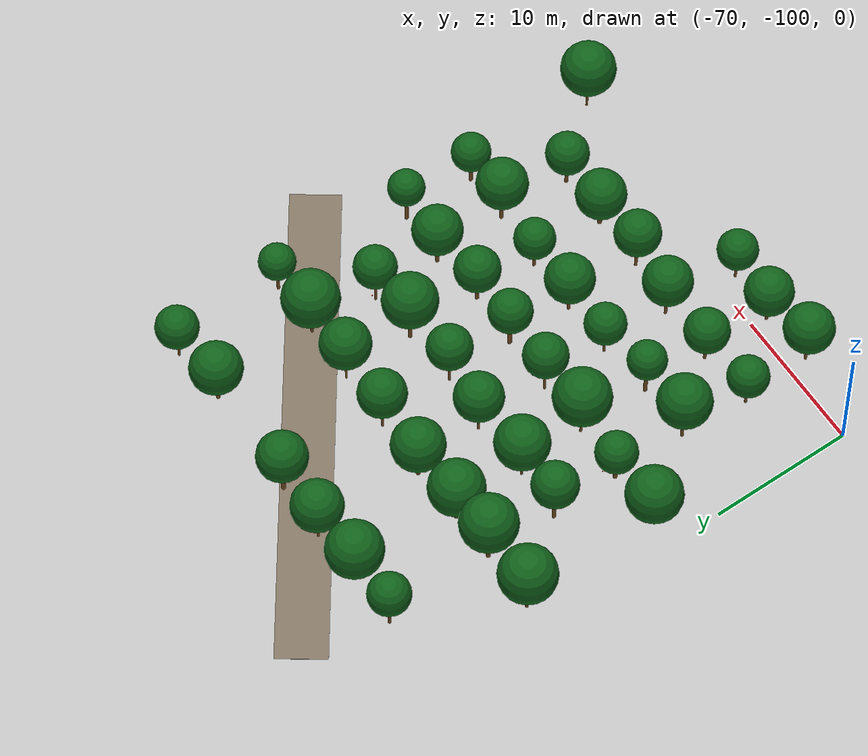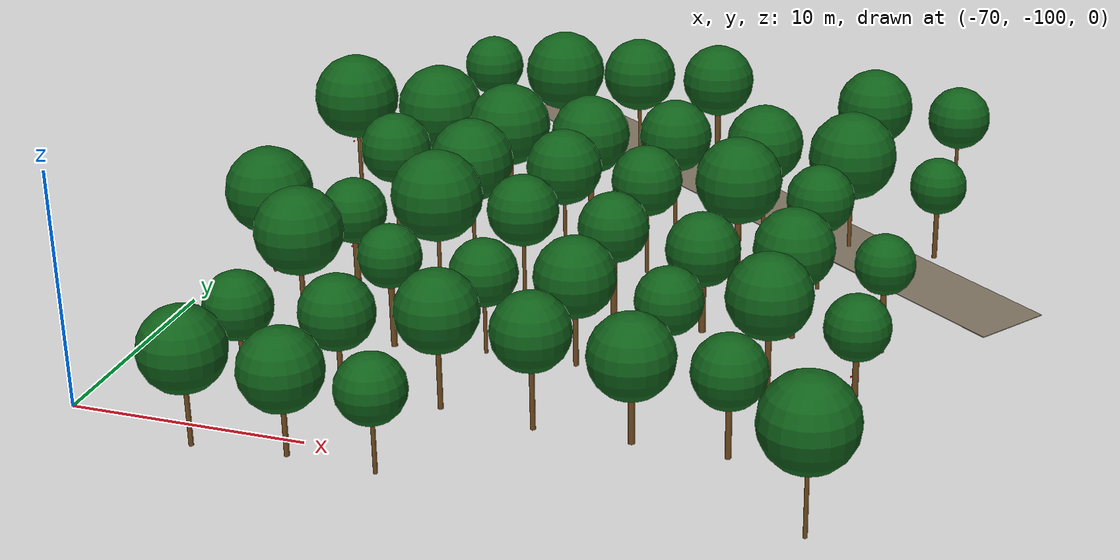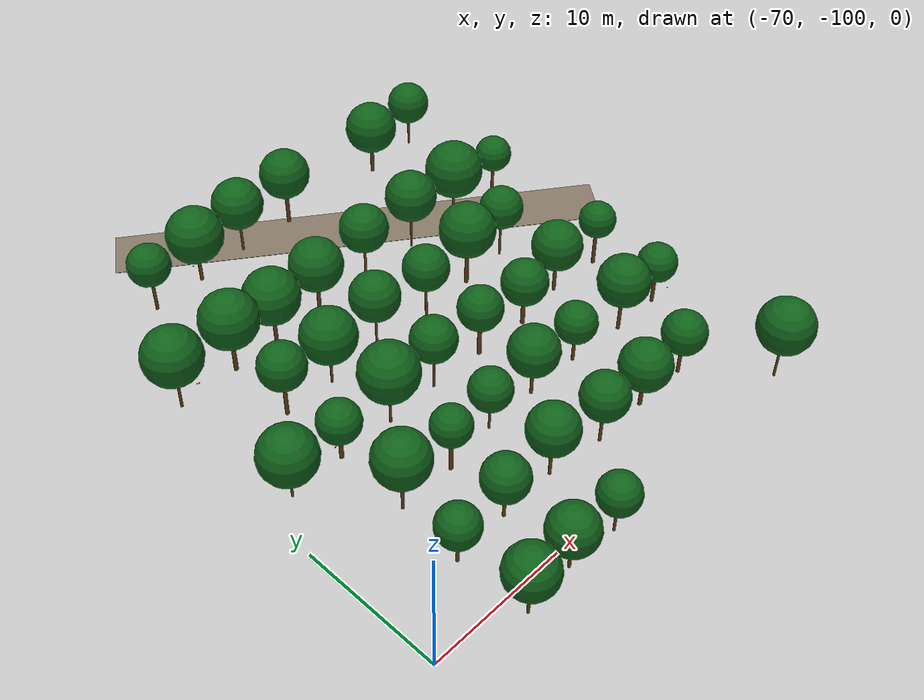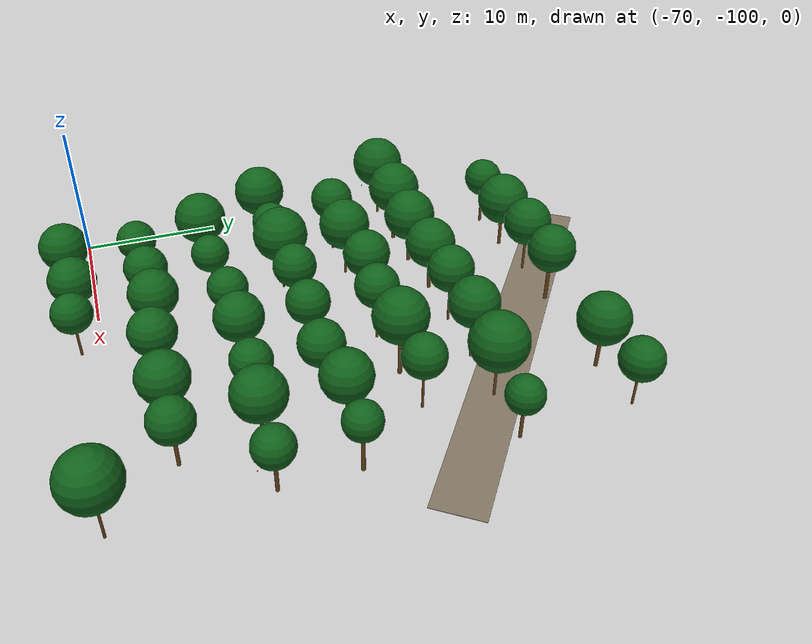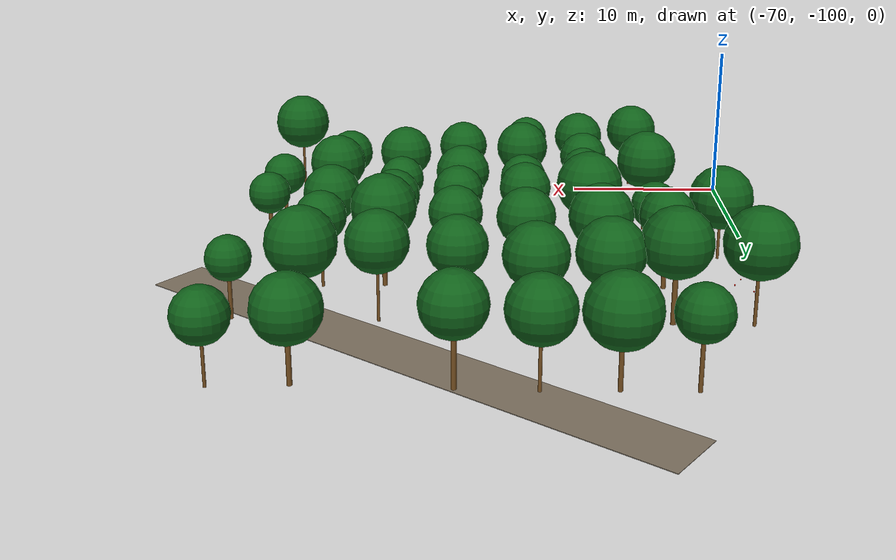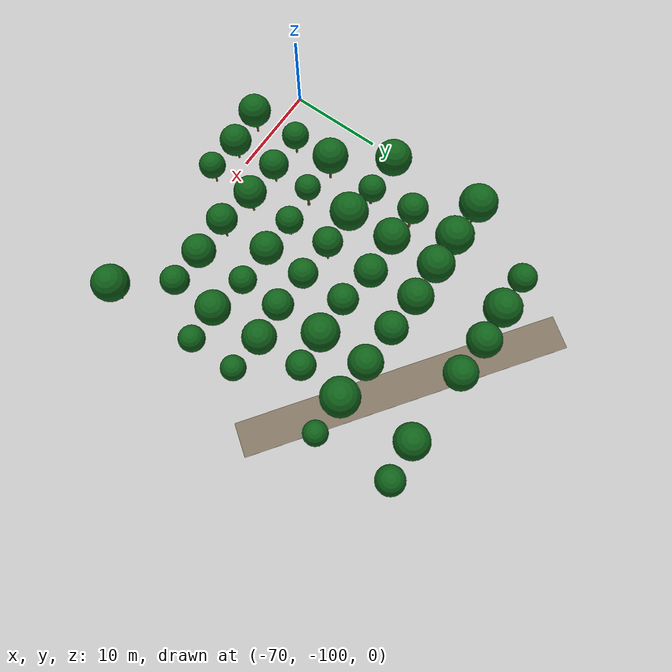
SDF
<sdf version="1.9">
 <world name="cheongsong_orchard">
  <model name="road_1">
   <static>true</static>
   <pose>-49.3 -72.2 0.02 0 0 -0.6273</pose>
   <link name="link">
    <collision name="collision">
     <geometry><box><size>34.0 3.5 0.04</size></box></geometry>
     <surface><friction><ode><mu>0.9</mu><mu2>0.9</mu2></ode></friction></surface>
    </collision>
    <visual name="visual">
     <geometry><box><size>34.0 3.5 0.04</size></box></geometry>
     <material><ambient>0.4 0.35 0.28 1</ambient><diffuse>0.5 0.45 0.38 1</diffuse></material>
    </visual>
   </link>
  </model>
  <model name="apple_tree_175">
   <static>true</static>
   <pose>-64.04 -101.42 0 0 0 0</pose>
   <link name="link">
    <collision name="trunk_col">
     <pose>0 0 1.18 0 0 0</pose>
     <geometry><cylinder><radius>0.100</radius><length>2.37</length></cylinder></geometry>
    </collision>
    <visual name="trunk_vis">
     <pose>0 0 1.18 0 0 0</pose>
     <geometry><cylinder><radius>0.100</radius><length>2.37</length></cylinder></geometry>
     <material><ambient>0.35 0.22 0.08 1</ambient><diffuse>0.45 0.30 0.12 1</diffuse></material>
    </visual>
    <collision name="canopy_col">
     <pose>0 0 4.11 0 0 0</pose>
     <geometry><sphere><radius>1.74</radius></sphere></geometry>
    </collision>
    <visual name="canopy_vis">
     <pose>0 0 4.11 0 0 0</pose>
     <geometry><sphere><radius>1.74</radius></sphere></geometry>
     <material><ambient>0.04 0.28 0.06 1</ambient><diffuse>0.06 0.38 0.10 1</diffuse></material>
    </visual>
   </link>
  </model>
  <model name="apple_tree_176">
   <static>true</static>
   <pose>-60.20 -101.09 0 0 0 0</pose>
   <link name="link">
    <collision name="trunk_col">
     <pose>0 0 1.00 0 0 0</pose>
     <geometry><cylinder><radius>0.108</radius><length>1.99</length></cylinder></geometry>
    </collision>
    <visual name="trunk_vis">
     <pose>0 0 1.00 0 0 0</pose>
     <geometry><cylinder><radius>0.108</radius><length>1.99</length></cylinder></geometry>
     <material><ambient>0.35 0.22 0.08 1</ambient><diffuse>0.45 0.30 0.12 1</diffuse></material>
    </visual>
    <collision name="canopy_col">
     <pose>0 0 3.67 0 0 0</pose>
     <geometry><sphere><radius>1.68</radius></sphere></geometry>
    </collision>
    <visual name="canopy_vis">
     <pose>0 0 3.67 0 0 0</pose>
     <geometry><sphere><radius>1.68</radius></sphere></geometry>
     <material><ambient>0.04 0.28 0.06 1</ambient><diffuse>0.06 0.38 0.10 1</diffuse></material>
    </visual>
   </link>
  </model>
  <model name="apple_tree_177">
   <static>true</static>
   <pose>-56.48 -101.31 0 0 0 0</pose>
   <link name="link">
    <collision name="trunk_col">
     <pose>0 0 1.08 0 0 0</pose>
     <geometry><cylinder><radius>0.090</radius><length>2.16</length></cylinder></geometry>
    </collision>
    <visual name="trunk_vis">
     <pose>0 0 1.08 0 0 0</pose>
     <geometry><cylinder><radius>0.090</radius><length>2.16</length></cylinder></geometry>
     <material><ambient>0.35 0.22 0.08 1</ambient><diffuse>0.45 0.30 0.12 1</diffuse></material>
    </visual>
    <collision name="canopy_col">
     <pose>0 0 3.56 0 0 0</pose>
     <geometry><sphere><radius>1.40</radius></sphere></geometry>
    </collision>
    <visual name="canopy_vis">
     <pose>0 0 3.56 0 0 0</pose>
     <geometry><sphere><radius>1.40</radius></sphere></geometry>
     <material><ambient>0.04 0.28 0.06 1</ambient><diffuse>0.06 0.38 0.10 1</diffuse></material>
    </visual>
   </link>
  </model>
  <model name="apple_tree_178">
   <static>true</static>
   <pose>-40.19 -100.99 0 0 0 0</pose>
   <link name="link">
    <collision name="trunk_col">
     <pose>0 0 1.37 0 0 0</pose>
     <geometry><cylinder><radius>0.085</radius><length>2.74</length></cylinder></geometry>
    </collision>
    <visual name="trunk_vis">
     <pose>0 0 1.37 0 0 0</pose>
     <geometry><cylinder><radius>0.085</radius><length>2.74</length></cylinder></geometry>
     <material><ambient>0.35 0.22 0.08 1</ambient><diffuse>0.45 0.30 0.12 1</diffuse></material>
    </visual>
    <collision name="canopy_col">
     <pose>0 0 4.63 0 0 0</pose>
     <geometry><sphere><radius>1.89</radius></sphere></geometry>
    </collision>
    <visual name="canopy_vis">
     <pose>0 0 4.63 0 0 0</pose>
     <geometry><sphere><radius>1.89</radius></sphere></geometry>
     <material><ambient>0.04 0.28 0.06 1</ambient><diffuse>0.06 0.38 0.10 1</diffuse></material>
    </visual>
   </link>
  </model>
  <model name="apple_tree_223">
   <static>true</static>
   <pose>-64.38 -96.31 0 0 0 0</pose>
   <link name="link">
    <collision name="trunk_col">
     <pose>0 0 1.03 0 0 0</pose>
     <geometry><cylinder><radius>0.103</radius><length>2.05</length></cylinder></geometry>
    </collision>
    <visual name="trunk_vis">
     <pose>0 0 1.03 0 0 0</pose>
     <geometry><cylinder><radius>0.103</radius><length>2.05</length></cylinder></geometry>
     <material><ambient>0.35 0.22 0.08 1</ambient><diffuse>0.45 0.30 0.12 1</diffuse></material>
    </visual>
    <collision name="canopy_col">
     <pose>0 0 3.49 0 0 0</pose>
     <geometry><sphere><radius>1.44</radius></sphere></geometry>
    </collision>
    <visual name="canopy_vis">
     <pose>0 0 3.49 0 0 0</pose>
     <geometry><sphere><radius>1.44</radius></sphere></geometry>
     <material><ambient>0.04 0.28 0.06 1</ambient><diffuse>0.06 0.38 0.10 1</diffuse></material>
    </visual>
   </link>
  </model>
  <model name="apple_tree_224">
   <static>true</static>
   <pose>-60.22 -96.06 0 0 0 0</pose>
   <link name="link">
    <collision name="trunk_col">
     <pose>0 0 1.06 0 0 0</pose>
     <geometry><cylinder><radius>0.111</radius><length>2.11</length></cylinder></geometry>
    </collision>
    <visual name="trunk_vis">
     <pose>0 0 1.06 0 0 0</pose>
     <geometry><cylinder><radius>0.111</radius><length>2.11</length></cylinder></geometry>
     <material><ambient>0.35 0.22 0.08 1</ambient><diffuse>0.45 0.30 0.12 1</diffuse></material>
    </visual>
    <collision name="canopy_col">
     <pose>0 0 3.67 0 0 0</pose>
     <geometry><sphere><radius>1.56</radius></sphere></geometry>
    </collision>
    <visual name="canopy_vis">
     <pose>0 0 3.67 0 0 0</pose>
     <geometry><sphere><radius>1.56</radius></sphere></geometry>
     <material><ambient>0.04 0.28 0.06 1</ambient><diffuse>0.06 0.38 0.10 1</diffuse></material>
    </visual>
   </link>
  </model>
  <model name="apple_tree_225">
   <static>true</static>
   <pose>-56.05 -95.94 0 0 0 0</pose>
   <link name="link">
    <collision name="trunk_col">
     <pose>0 0 1.27 0 0 0</pose>
     <geometry><cylinder><radius>0.110</radius><length>2.55</length></cylinder></geometry>
    </collision>
    <visual name="trunk_vis">
     <pose>0 0 1.27 0 0 0</pose>
     <geometry><cylinder><radius>0.110</radius><length>2.55</length></cylinder></geometry>
     <material><ambient>0.35 0.22 0.08 1</ambient><diffuse>0.45 0.30 0.12 1</diffuse></material>
    </visual>
    <collision name="canopy_col">
     <pose>0 0 4.26 0 0 0</pose>
     <geometry><sphere><radius>1.71</radius></sphere></geometry>
    </collision>
    <visual name="canopy_vis">
     <pose>0 0 4.26 0 0 0</pose>
     <geometry><sphere><radius>1.71</radius></sphere></geometry>
     <material><ambient>0.04 0.28 0.06 1</ambient><diffuse>0.06 0.38 0.10 1</diffuse></material>
    </visual>
   </link>
  </model>
  <model name="apple_tree_226">
   <static>true</static>
   <pose>-52.01 -96.46 0 0 0 0</pose>
   <link name="link">
    <collision name="trunk_col">
     <pose>0 0 1.30 0 0 0</pose>
     <geometry><cylinder><radius>0.108</radius><length>2.60</length></cylinder></geometry>
    </collision>
    <visual name="trunk_vis">
     <pose>0 0 1.30 0 0 0</pose>
     <geometry><cylinder><radius>0.108</radius><length>2.60</length></cylinder></geometry>
     <material><ambient>0.35 0.22 0.08 1</ambient><diffuse>0.45 0.30 0.12 1</diffuse></material>
    </visual>
    <collision name="canopy_col">
     <pose>0 0 4.21 0 0 0</pose>
     <geometry><sphere><radius>1.61</radius></sphere></geometry>
    </collision>
    <visual name="canopy_vis">
     <pose>0 0 4.21 0 0 0</pose>
     <geometry><sphere><radius>1.61</radius></sphere></geometry>
     <material><ambient>0.04 0.28 0.06 1</ambient><diffuse>0.06 0.38 0.10 1</diffuse></material>
    </visual>
   </link>
  </model>
  <model name="apple_tree_227">
   <static>true</static>
   <pose>-48.04 -96.39 0 0 0 0</pose>
   <link name="link">
    <collision name="trunk_col">
     <pose>0 0 0.99 0 0 0</pose>
     <geometry><cylinder><radius>0.139</radius><length>1.98</length></cylinder></geometry>
    </collision>
    <visual name="trunk_vis">
     <pose>0 0 0.99 0 0 0</pose>
     <geometry><cylinder><radius>0.139</radius><length>1.98</length></cylinder></geometry>
     <material><ambient>0.35 0.22 0.08 1</ambient><diffuse>0.45 0.30 0.12 1</diffuse></material>
    </visual>
    <collision name="canopy_col">
     <pose>0 0 3.72 0 0 0</pose>
     <geometry><sphere><radius>1.74</radius></sphere></geometry>
    </collision>
    <visual name="canopy_vis">
     <pose>0 0 3.72 0 0 0</pose>
     <geometry><sphere><radius>1.74</radius></sphere></geometry>
     <material><ambient>0.04 0.28 0.06 1</ambient><diffuse>0.06 0.38 0.10 1</diffuse></material>
    </visual>
   </link>
  </model>
  <model name="apple_tree_228">
   <static>true</static>
   <pose>-44.23 -96.41 0 0 0 0</pose>
   <link name="link">
    <collision name="trunk_col">
     <pose>0 0 1.09 0 0 0</pose>
     <geometry><cylinder><radius>0.125</radius><length>2.18</length></cylinder></geometry>
    </collision>
    <visual name="trunk_vis">
     <pose>0 0 1.09 0 0 0</pose>
     <geometry><cylinder><radius>0.125</radius><length>2.18</length></cylinder></geometry>
     <material><ambient>0.35 0.22 0.08 1</ambient><diffuse>0.45 0.30 0.12 1</diffuse></material>
    </visual>
    <collision name="canopy_col">
     <pose>0 0 3.67 0 0 0</pose>
     <geometry><sphere><radius>1.49</radius></sphere></geometry>
    </collision>
    <visual name="canopy_vis">
     <pose>0 0 3.67 0 0 0</pose>
     <geometry><sphere><radius>1.49</radius></sphere></geometry>
     <material><ambient>0.04 0.28 0.06 1</ambient><diffuse>0.06 0.38 0.10 1</diffuse></material>
    </visual>
   </link>
  </model>
  <model name="apple_tree_274">
   <static>true</static>
   <pose>-63.98 -91.47 0 0 0 0</pose>
   <link name="link">
    <collision name="trunk_col">
     <pose>0 0 1.42 0 0 0</pose>
     <geometry><cylinder><radius>0.109</radius><length>2.85</length></cylinder></geometry>
    </collision>
    <visual name="trunk_vis">
     <pose>0 0 1.42 0 0 0</pose>
     <geometry><cylinder><radius>0.109</radius><length>2.85</length></cylinder></geometry>
     <material><ambient>0.35 0.22 0.08 1</ambient><diffuse>0.45 0.30 0.12 1</diffuse></material>
    </visual>
    <collision name="canopy_col">
     <pose>0 0 4.72 0 0 0</pose>
     <geometry><sphere><radius>1.87</radius></sphere></geometry>
    </collision>
    <visual name="canopy_vis">
     <pose>0 0 4.72 0 0 0</pose>
     <geometry><sphere><radius>1.87</radius></sphere></geometry>
     <material><ambient>0.04 0.28 0.06 1</ambient><diffuse>0.06 0.38 0.10 1</diffuse></material>
    </visual>
   </link>
  </model>
  <model name="apple_tree_275">
   <static>true</static>
   <pose>-59.93 -91.47 0 0 0 0</pose>
   <link name="link">
    <collision name="trunk_col">
     <pose>0 0 1.38 0 0 0</pose>
     <geometry><cylinder><radius>0.135</radius><length>2.77</length></cylinder></geometry>
    </collision>
    <visual name="trunk_vis">
     <pose>0 0 1.38 0 0 0</pose>
     <geometry><cylinder><radius>0.135</radius><length>2.77</length></cylinder></geometry>
     <material><ambient>0.35 0.22 0.08 1</ambient><diffuse>0.45 0.30 0.12 1</diffuse></material>
    </visual>
    <collision name="canopy_col">
     <pose>0 0 4.11 0 0 0</pose>
     <geometry><sphere><radius>1.35</radius></sphere></geometry>
    </collision>
    <visual name="canopy_vis">
     <pose>0 0 4.11 0 0 0</pose>
     <geometry><sphere><radius>1.35</radius></sphere></geometry>
     <material><ambient>0.04 0.28 0.06 1</ambient><diffuse>0.06 0.38 0.10 1</diffuse></material>
    </visual>
   </link>
  </model>
  <model name="apple_tree_276">
   <static>true</static>
   <pose>-56.04 -90.97 0 0 0 0</pose>
   <link name="link">
    <collision name="trunk_col">
     <pose>0 0 1.12 0 0 0</pose>
     <geometry><cylinder><radius>0.083</radius><length>2.23</length></cylinder></geometry>
    </collision>
    <visual name="trunk_vis">
     <pose>0 0 1.12 0 0 0</pose>
     <geometry><cylinder><radius>0.083</radius><length>2.23</length></cylinder></geometry>
     <material><ambient>0.35 0.22 0.08 1</ambient><diffuse>0.45 0.30 0.12 1</diffuse></material>
    </visual>
    <collision name="canopy_col">
     <pose>0 0 3.67 0 0 0</pose>
     <geometry><sphere><radius>1.44</radius></sphere></geometry>
    </collision>
    <visual name="canopy_vis">
     <pose>0 0 3.67 0 0 0</pose>
     <geometry><sphere><radius>1.44</radius></sphere></geometry>
     <material><ambient>0.04 0.28 0.06 1</ambient><diffuse>0.06 0.38 0.10 1</diffuse></material>
    </visual>
   </link>
  </model>
  <model name="apple_tree_277">
   <static>true</static>
   <pose>-52.13 -90.93 0 0 0 0</pose>
   <link name="link">
    <collision name="trunk_col">
     <pose>0 0 1.14 0 0 0</pose>
     <geometry><cylinder><radius>0.112</radius><length>2.28</length></cylinder></geometry>
    </collision>
    <visual name="trunk_vis">
     <pose>0 0 1.14 0 0 0</pose>
     <geometry><cylinder><radius>0.112</radius><length>2.28</length></cylinder></geometry>
     <material><ambient>0.35 0.22 0.08 1</ambient><diffuse>0.45 0.30 0.12 1</diffuse></material>
    </visual>
    <collision name="canopy_col">
     <pose>0 0 3.99 0 0 0</pose>
     <geometry><sphere><radius>1.71</radius></sphere></geometry>
    </collision>
    <visual name="canopy_vis">
     <pose>0 0 3.99 0 0 0</pose>
     <geometry><sphere><radius>1.71</radius></sphere></geometry>
     <material><ambient>0.04 0.28 0.06 1</ambient><diffuse>0.06 0.38 0.10 1</diffuse></material>
    </visual>
   </link>
  </model>
  <model name="apple_tree_278">
   <static>true</static>
   <pose>-48.17 -90.96 0 0 0 0</pose>
   <link name="link">
    <collision name="trunk_col">
     <pose>0 0 1.04 0 0 0</pose>
     <geometry><cylinder><radius>0.115</radius><length>2.08</length></cylinder></geometry>
    </collision>
    <visual name="trunk_vis">
     <pose>0 0 1.04 0 0 0</pose>
     <geometry><cylinder><radius>0.115</radius><length>2.08</length></cylinder></geometry>
     <material><ambient>0.35 0.22 0.08 1</ambient><diffuse>0.45 0.30 0.12 1</diffuse></material>
    </visual>
    <collision name="canopy_col">
     <pose>0 0 3.50 0 0 0</pose>
     <geometry><sphere><radius>1.42</radius></sphere></geometry>
    </collision>
    <visual name="canopy_vis">
     <pose>0 0 3.50 0 0 0</pose>
     <geometry><sphere><radius>1.42</radius></sphere></geometry>
     <material><ambient>0.04 0.28 0.06 1</ambient><diffuse>0.06 0.38 0.10 1</diffuse></material>
    </visual>
   </link>
  </model>
  <model name="apple_tree_279">
   <static>true</static>
   <pose>-44.00 -91.29 0 0 0 0</pose>
   <link name="link">
    <collision name="trunk_col">
     <pose>0 0 1.33 0 0 0</pose>
     <geometry><cylinder><radius>0.125</radius><length>2.66</length></cylinder></geometry>
    </collision>
    <visual name="trunk_vis">
     <pose>0 0 1.33 0 0 0</pose>
     <geometry><cylinder><radius>0.125</radius><length>2.66</length></cylinder></geometry>
     <material><ambient>0.35 0.22 0.08 1</ambient><diffuse>0.45 0.30 0.12 1</diffuse></material>
    </visual>
    <collision name="canopy_col">
     <pose>0 0 4.44 0 0 0</pose>
     <geometry><sphere><radius>1.77</radius></sphere></geometry>
    </collision>
    <visual name="canopy_vis">
     <pose>0 0 4.44 0 0 0</pose>
     <geometry><sphere><radius>1.77</radius></sphere></geometry>
     <material><ambient>0.04 0.28 0.06 1</ambient><diffuse>0.06 0.38 0.10 1</diffuse></material>
    </visual>
   </link>
  </model>
  <model name="apple_tree_280">
   <static>true</static>
   <pose>-40.48 -91.29 0 0 0 0</pose>
   <link name="link">
    <collision name="trunk_col">
     <pose>0 0 1.12 0 0 0</pose>
     <geometry><cylinder><radius>0.127</radius><length>2.24</length></cylinder></geometry>
    </collision>
    <visual name="trunk_vis">
     <pose>0 0 1.12 0 0 0</pose>
     <geometry><cylinder><radius>0.127</radius><length>2.24</length></cylinder></geometry>
     <material><ambient>0.35 0.22 0.08 1</ambient><diffuse>0.45 0.30 0.12 1</diffuse></material>
    </visual>
    <collision name="canopy_col">
     <pose>0 0 3.59 0 0 0</pose>
     <geometry><sphere><radius>1.35</radius></sphere></geometry>
    </collision>
    <visual name="canopy_vis">
     <pose>0 0 3.59 0 0 0</pose>
     <geometry><sphere><radius>1.35</radius></sphere></geometry>
     <material><ambient>0.04 0.28 0.06 1</ambient><diffuse>0.06 0.38 0.10 1</diffuse></material>
    </visual>
   </link>
  </model>
  <model name="apple_tree_329">
   <static>true</static>
   <pose>-67.96 -86.20 0 0 0 0</pose>
   <link name="link">
    <collision name="trunk_col">
     <pose>0 0 1.00 0 0 0</pose>
     <geometry><cylinder><radius>0.085</radius><length>2.00</length></cylinder></geometry>
    </collision>
    <visual name="trunk_vis">
     <pose>0 0 1.00 0 0 0</pose>
     <geometry><cylinder><radius>0.085</radius><length>2.00</length></cylinder></geometry>
     <material><ambient>0.35 0.22 0.08 1</ambient><diffuse>0.45 0.30 0.12 1</diffuse></material>
    </visual>
    <collision name="canopy_col">
     <pose>0 0 3.94 0 0 0</pose>
     <geometry><sphere><radius>1.94</radius></sphere></geometry>
    </collision>
    <visual name="canopy_vis">
     <pose>0 0 3.94 0 0 0</pose>
     <geometry><sphere><radius>1.94</radius></sphere></geometry>
     <material><ambient>0.04 0.28 0.06 1</ambient><diffuse>0.06 0.38 0.10 1</diffuse></material>
    </visual>
   </link>
  </model>
  <model name="apple_tree_330">
   <static>true</static>
   <pose>-63.95 -86.15 0 0 0 0</pose>
   <link name="link">
    <collision name="trunk_col">
     <pose>0 0 0.99 0 0 0</pose>
     <geometry><cylinder><radius>0.145</radius><length>1.98</length></cylinder></geometry>
    </collision>
    <visual name="trunk_vis">
     <pose>0 0 0.99 0 0 0</pose>
     <geometry><cylinder><radius>0.145</radius><length>1.98</length></cylinder></geometry>
     <material><ambient>0.35 0.22 0.08 1</ambient><diffuse>0.45 0.30 0.12 1</diffuse></material>
    </visual>
    <collision name="canopy_col">
     <pose>0 0 3.43 0 0 0</pose>
     <geometry><sphere><radius>1.45</radius></sphere></geometry>
    </collision>
    <visual name="canopy_vis">
     <pose>0 0 3.43 0 0 0</pose>
     <geometry><sphere><radius>1.45</radius></sphere></geometry>
     <material><ambient>0.04 0.28 0.06 1</ambient><diffuse>0.06 0.38 0.10 1</diffuse></material>
    </visual>
   </link>
  </model>
  <model name="apple_tree_331">
   <static>true</static>
   <pose>-59.95 -86.29 0 0 0 0</pose>
   <link name="link">
    <collision name="trunk_col">
     <pose>0 0 1.34 0 0 0</pose>
     <geometry><cylinder><radius>0.090</radius><length>2.69</length></cylinder></geometry>
    </collision>
    <visual name="trunk_vis">
     <pose>0 0 1.34 0 0 0</pose>
     <geometry><cylinder><radius>0.090</radius><length>2.69</length></cylinder></geometry>
     <material><ambient>0.35 0.22 0.08 1</ambient><diffuse>0.45 0.30 0.12 1</diffuse></material>
    </visual>
    <collision name="canopy_col">
     <pose>0 0 4.68 0 0 0</pose>
     <geometry><sphere><radius>1.99</radius></sphere></geometry>
    </collision>
    <visual name="canopy_vis">
     <pose>0 0 4.68 0 0 0</pose>
     <geometry><sphere><radius>1.99</radius></sphere></geometry>
     <material><ambient>0.04 0.28 0.06 1</ambient><diffuse>0.06 0.38 0.10 1</diffuse></material>
    </visual>
   </link>
  </model>
  <model name="apple_tree_332">
   <static>true</static>
   <pose>-56.06 -86.19 0 0 0 0</pose>
   <link name="link">
    <collision name="trunk_col">
     <pose>0 0 1.45 0 0 0</pose>
     <geometry><cylinder><radius>0.084</radius><length>2.90</length></cylinder></geometry>
    </collision>
    <visual name="trunk_vis">
     <pose>0 0 1.45 0 0 0</pose>
     <geometry><cylinder><radius>0.084</radius><length>2.90</length></cylinder></geometry>
     <material><ambient>0.35 0.22 0.08 1</ambient><diffuse>0.45 0.30 0.12 1</diffuse></material>
    </visual>
    <collision name="canopy_col">
     <pose>0 0 4.45 0 0 0</pose>
     <geometry><sphere><radius>1.55</radius></sphere></geometry>
    </collision>
    <visual name="canopy_vis">
     <pose>0 0 4.45 0 0 0</pose>
     <geometry><sphere><radius>1.55</radius></sphere></geometry>
     <material><ambient>0.04 0.28 0.06 1</ambient><diffuse>0.06 0.38 0.10 1</diffuse></material>
    </visual>
   </link>
  </model>
  <model name="apple_tree_333">
   <static>true</static>
   <pose>-51.99 -86.29 0 0 0 0</pose>
   <link name="link">
    <collision name="trunk_col">
     <pose>0 0 1.35 0 0 0</pose>
     <geometry><cylinder><radius>0.147</radius><length>2.70</length></cylinder></geometry>
    </collision>
    <visual name="trunk_vis">
     <pose>0 0 1.35 0 0 0</pose>
     <geometry><cylinder><radius>0.147</radius><length>2.70</length></cylinder></geometry>
     <material><ambient>0.35 0.22 0.08 1</ambient><diffuse>0.45 0.30 0.12 1</diffuse></material>
    </visual>
    <collision name="canopy_col">
     <pose>0 0 4.22 0 0 0</pose>
     <geometry><sphere><radius>1.52</radius></sphere></geometry>
    </collision>
    <visual name="canopy_vis">
     <pose>0 0 4.22 0 0 0</pose>
     <geometry><sphere><radius>1.52</radius></sphere></geometry>
     <material><ambient>0.04 0.28 0.06 1</ambient><diffuse>0.06 0.38 0.10 1</diffuse></material>
    </visual>
   </link>
  </model>
  <model name="apple_tree_334">
   <static>true</static>
   <pose>-48.03 -86.47 0 0 0 0</pose>
   <link name="link">
    <collision name="trunk_col">
     <pose>0 0 1.11 0 0 0</pose>
     <geometry><cylinder><radius>0.149</radius><length>2.22</length></cylinder></geometry>
    </collision>
    <visual name="trunk_vis">
     <pose>0 0 1.11 0 0 0</pose>
     <geometry><cylinder><radius>0.149</radius><length>2.22</length></cylinder></geometry>
     <material><ambient>0.35 0.22 0.08 1</ambient><diffuse>0.45 0.30 0.12 1</diffuse></material>
    </visual>
    <collision name="canopy_col">
     <pose>0 0 3.81 0 0 0</pose>
     <geometry><sphere><radius>1.59</radius></sphere></geometry>
    </collision>
    <visual name="canopy_vis">
     <pose>0 0 3.81 0 0 0</pose>
     <geometry><sphere><radius>1.59</radius></sphere></geometry>
     <material><ambient>0.04 0.28 0.06 1</ambient><diffuse>0.06 0.38 0.10 1</diffuse></material>
    </visual>
   </link>
  </model>
  <model name="apple_tree_335">
   <static>true</static>
   <pose>-44.28 -85.92 0 0 0 0</pose>
   <link name="link">
    <collision name="trunk_col">
     <pose>0 0 1.19 0 0 0</pose>
     <geometry><cylinder><radius>0.128</radius><length>2.37</length></cylinder></geometry>
    </collision>
    <visual name="trunk_vis">
     <pose>0 0 1.19 0 0 0</pose>
     <geometry><cylinder><radius>0.128</radius><length>2.37</length></cylinder></geometry>
     <material><ambient>0.35 0.22 0.08 1</ambient><diffuse>0.45 0.30 0.12 1</diffuse></material>
    </visual>
    <collision name="canopy_col">
     <pose>0 0 4.10 0 0 0</pose>
     <geometry><sphere><radius>1.73</radius></sphere></geometry>
    </collision>
    <visual name="canopy_vis">
     <pose>0 0 4.10 0 0 0</pose>
     <geometry><sphere><radius>1.73</radius></sphere></geometry>
     <material><ambient>0.04 0.28 0.06 1</ambient><diffuse>0.06 0.38 0.10 1</diffuse></material>
    </visual>
   </link>
  </model>
  <model name="apple_tree_336">
   <static>true</static>
   <pose>-40.44 -86.12 0 0 0 0</pose>
   <link name="link">
    <collision name="trunk_col">
     <pose>0 0 1.36 0 0 0</pose>
     <geometry><cylinder><radius>0.130</radius><length>2.73</length></cylinder></geometry>
    </collision>
    <visual name="trunk_vis">
     <pose>0 0 1.36 0 0 0</pose>
     <geometry><cylinder><radius>0.130</radius><length>2.73</length></cylinder></geometry>
     <material><ambient>0.35 0.22 0.08 1</ambient><diffuse>0.45 0.30 0.12 1</diffuse></material>
    </visual>
    <collision name="canopy_col">
     <pose>0 0 3.99 0 0 0</pose>
     <geometry><sphere><radius>1.27</radius></sphere></geometry>
    </collision>
    <visual name="canopy_vis">
     <pose>0 0 3.99 0 0 0</pose>
     <geometry><sphere><radius>1.27</radius></sphere></geometry>
     <material><ambient>0.04 0.28 0.06 1</ambient><diffuse>0.06 0.38 0.10 1</diffuse></material>
    </visual>
   </link>
  </model>
  <model name="apple_tree_385">
   <static>true</static>
   <pose>-64.01 -81.25 0 0 0 0</pose>
   <link name="link">
    <collision name="trunk_col">
     <pose>0 0 1.45 0 0 0</pose>
     <geometry><cylinder><radius>0.138</radius><length>2.89</length></cylinder></geometry>
    </collision>
    <visual name="trunk_vis">
     <pose>0 0 1.45 0 0 0</pose>
     <geometry><cylinder><radius>0.138</radius><length>2.89</length></cylinder></geometry>
     <material><ambient>0.35 0.22 0.08 1</ambient><diffuse>0.45 0.30 0.12 1</diffuse></material>
    </visual>
    <collision name="canopy_col">
     <pose>0 0 4.49 0 0 0</pose>
     <geometry><sphere><radius>1.60</radius></sphere></geometry>
    </collision>
    <visual name="canopy_vis">
     <pose>0 0 4.49 0 0 0</pose>
     <geometry><sphere><radius>1.60</radius></sphere></geometry>
     <material><ambient>0.04 0.28 0.06 1</ambient><diffuse>0.06 0.38 0.10 1</diffuse></material>
    </visual>
   </link>
  </model>
  <model name="apple_tree_386">
   <static>true</static>
   <pose>-60.30 -81.32 0 0 0 0</pose>
   <link name="link">
    <collision name="trunk_col">
     <pose>0 0 1.24 0 0 0</pose>
     <geometry><cylinder><radius>0.089</radius><length>2.48</length></cylinder></geometry>
    </collision>
    <visual name="trunk_vis">
     <pose>0 0 1.24 0 0 0</pose>
     <geometry><cylinder><radius>0.089</radius><length>2.48</length></cylinder></geometry>
     <material><ambient>0.35 0.22 0.08 1</ambient><diffuse>0.45 0.30 0.12 1</diffuse></material>
    </visual>
    <collision name="canopy_col">
     <pose>0 0 4.37 0 0 0</pose>
     <geometry><sphere><radius>1.88</radius></sphere></geometry>
    </collision>
    <visual name="canopy_vis">
     <pose>0 0 4.37 0 0 0</pose>
     <geometry><sphere><radius>1.88</radius></sphere></geometry>
     <material><ambient>0.04 0.28 0.06 1</ambient><diffuse>0.06 0.38 0.10 1</diffuse></material>
    </visual>
   </link>
  </model>
  <model name="apple_tree_387">
   <static>true</static>
   <pose>-56.02 -80.95 0 0 0 0</pose>
   <link name="link">
    <collision name="trunk_col">
     <pose>0 0 1.35 0 0 0</pose>
     <geometry><cylinder><radius>0.083</radius><length>2.69</length></cylinder></geometry>
    </collision>
    <visual name="trunk_vis">
     <pose>0 0 1.35 0 0 0</pose>
     <geometry><cylinder><radius>0.083</radius><length>2.69</length></cylinder></geometry>
     <material><ambient>0.35 0.22 0.08 1</ambient><diffuse>0.45 0.30 0.12 1</diffuse></material>
    </visual>
    <collision name="canopy_col">
     <pose>0 0 4.39 0 0 0</pose>
     <geometry><sphere><radius>1.70</radius></sphere></geometry>
    </collision>
    <visual name="canopy_vis">
     <pose>0 0 4.39 0 0 0</pose>
     <geometry><sphere><radius>1.70</radius></sphere></geometry>
     <material><ambient>0.04 0.28 0.06 1</ambient><diffuse>0.06 0.38 0.10 1</diffuse></material>
    </visual>
   </link>
  </model>
  <model name="apple_tree_388">
   <static>true</static>
   <pose>-51.99 -81.48 0 0 0 0</pose>
   <link name="link">
    <collision name="trunk_col">
     <pose>0 0 1.43 0 0 0</pose>
     <geometry><cylinder><radius>0.091</radius><length>2.86</length></cylinder></geometry>
    </collision>
    <visual name="trunk_vis">
     <pose>0 0 1.43 0 0 0</pose>
     <geometry><cylinder><radius>0.091</radius><length>2.86</length></cylinder></geometry>
     <material><ambient>0.35 0.22 0.08 1</ambient><diffuse>0.45 0.30 0.12 1</diffuse></material>
    </visual>
    <collision name="canopy_col">
     <pose>0 0 4.42 0 0 0</pose>
     <geometry><sphere><radius>1.57</radius></sphere></geometry>
    </collision>
    <visual name="canopy_vis">
     <pose>0 0 4.42 0 0 0</pose>
     <geometry><sphere><radius>1.57</radius></sphere></geometry>
     <material><ambient>0.04 0.28 0.06 1</ambient><diffuse>0.06 0.38 0.10 1</diffuse></material>
    </visual>
   </link>
  </model>
  <model name="apple_tree_389">
   <static>true</static>
   <pose>-47.89 -81.23 0 0 0 0</pose>
   <link name="link">
    <collision name="trunk_col">
     <pose>0 0 1.46 0 0 0</pose>
     <geometry><cylinder><radius>0.144</radius><length>2.92</length></cylinder></geometry>
    </collision>
    <visual name="trunk_vis">
     <pose>0 0 1.46 0 0 0</pose>
     <geometry><cylinder><radius>0.144</radius><length>2.92</length></cylinder></geometry>
     <material><ambient>0.35 0.22 0.08 1</ambient><diffuse>0.45 0.30 0.12 1</diffuse></material>
    </visual>
    <collision name="canopy_col">
     <pose>0 0 4.83 0 0 0</pose>
     <geometry><sphere><radius>1.91</radius></sphere></geometry>
    </collision>
    <visual name="canopy_vis">
     <pose>0 0 4.83 0 0 0</pose>
     <geometry><sphere><radius>1.91</radius></sphere></geometry>
     <material><ambient>0.04 0.28 0.06 1</ambient><diffuse>0.06 0.38 0.10 1</diffuse></material>
    </visual>
   </link>
  </model>
  <model name="apple_tree_390">
   <static>true</static>
   <pose>-44.31 -80.96 0 0 0 0</pose>
   <link name="link">
    <collision name="trunk_col">
     <pose>0 0 1.40 0 0 0</pose>
     <geometry><cylinder><radius>0.087</radius><length>2.80</length></cylinder></geometry>
    </collision>
    <visual name="trunk_vis">
     <pose>0 0 1.40 0 0 0</pose>
     <geometry><cylinder><radius>0.087</radius><length>2.80</length></cylinder></geometry>
     <material><ambient>0.35 0.22 0.08 1</ambient><diffuse>0.45 0.30 0.12 1</diffuse></material>
    </visual>
    <collision name="canopy_col">
     <pose>0 0 4.29 0 0 0</pose>
     <geometry><sphere><radius>1.49</radius></sphere></geometry>
    </collision>
    <visual name="canopy_vis">
     <pose>0 0 4.29 0 0 0</pose>
     <geometry><sphere><radius>1.49</radius></sphere></geometry>
     <material><ambient>0.04 0.28 0.06 1</ambient><diffuse>0.06 0.38 0.10 1</diffuse></material>
    </visual>
   </link>
  </model>
  <model name="apple_tree_440">
   <static>true</static>
   <pose>-68.24 -76.10 0 0 0 0</pose>
   <link name="link">
    <collision name="trunk_col">
     <pose>0 0 1.36 0 0 0</pose>
     <geometry><cylinder><radius>0.097</radius><length>2.73</length></cylinder></geometry>
    </collision>
    <visual name="trunk_vis">
     <pose>0 0 1.36 0 0 0</pose>
     <geometry><cylinder><radius>0.097</radius><length>2.73</length></cylinder></geometry>
     <material><ambient>0.35 0.22 0.08 1</ambient><diffuse>0.45 0.30 0.12 1</diffuse></material>
    </visual>
    <collision name="canopy_col">
     <pose>0 0 4.72 0 0 0</pose>
     <geometry><sphere><radius>2.00</radius></sphere></geometry>
    </collision>
    <visual name="canopy_vis">
     <pose>0 0 4.72 0 0 0</pose>
     <geometry><sphere><radius>2.00</radius></sphere></geometry>
     <material><ambient>0.04 0.28 0.06 1</ambient><diffuse>0.06 0.38 0.10 1</diffuse></material>
    </visual>
   </link>
  </model>
  <model name="apple_tree_441">
   <static>true</static>
   <pose>-63.89 -76.17 0 0 0 0</pose>
   <link name="link">
    <collision name="trunk_col">
     <pose>0 0 1.35 0 0 0</pose>
     <geometry><cylinder><radius>0.150</radius><length>2.70</length></cylinder></geometry>
    </collision>
    <visual name="trunk_vis">
     <pose>0 0 1.35 0 0 0</pose>
     <geometry><cylinder><radius>0.150</radius><length>2.70</length></cylinder></geometry>
     <material><ambient>0.35 0.22 0.08 1</ambient><diffuse>0.45 0.30 0.12 1</diffuse></material>
    </visual>
    <collision name="canopy_col">
     <pose>0 0 4.68 0 0 0</pose>
     <geometry><sphere><radius>1.98</radius></sphere></geometry>
    </collision>
    <visual name="canopy_vis">
     <pose>0 0 4.68 0 0 0</pose>
     <geometry><sphere><radius>1.98</radius></sphere></geometry>
     <material><ambient>0.04 0.28 0.06 1</ambient><diffuse>0.06 0.38 0.10 1</diffuse></material>
    </visual>
   </link>
  </model>
  <model name="apple_tree_442">
   <static>true</static>
   <pose>-60.43 -76.10 0 0 0 0</pose>
   <link name="link">
    <collision name="trunk_col">
     <pose>0 0 1.10 0 0 0</pose>
     <geometry><cylinder><radius>0.137</radius><length>2.21</length></cylinder></geometry>
    </collision>
    <visual name="trunk_vis">
     <pose>0 0 1.10 0 0 0</pose>
     <geometry><cylinder><radius>0.137</radius><length>2.21</length></cylinder></geometry>
     <material><ambient>0.35 0.22 0.08 1</ambient><diffuse>0.45 0.30 0.12 1</diffuse></material>
    </visual>
    <collision name="canopy_col">
     <pose>0 0 4.14 0 0 0</pose>
     <geometry><sphere><radius>1.93</radius></sphere></geometry>
    </collision>
    <visual name="canopy_vis">
     <pose>0 0 4.14 0 0 0</pose>
     <geometry><sphere><radius>1.93</radius></sphere></geometry>
     <material><ambient>0.04 0.28 0.06 1</ambient><diffuse>0.06 0.38 0.10 1</diffuse></material>
    </visual>
   </link>
  </model>
  <model name="apple_tree_443">
   <static>true</static>
   <pose>-56.46 -75.89 0 0 0 0</pose>
   <link name="link">
    <collision name="trunk_col">
     <pose>0 0 1.08 0 0 0</pose>
     <geometry><cylinder><radius>0.139</radius><length>2.16</length></cylinder></geometry>
    </collision>
    <visual name="trunk_vis">
     <pose>0 0 1.08 0 0 0</pose>
     <geometry><cylinder><radius>0.139</radius><length>2.16</length></cylinder></geometry>
     <material><ambient>0.35 0.22 0.08 1</ambient><diffuse>0.45 0.30 0.12 1</diffuse></material>
    </visual>
    <collision name="canopy_col">
     <pose>0 0 4.00 0 0 0</pose>
     <geometry><sphere><radius>1.84</radius></sphere></geometry>
    </collision>
    <visual name="canopy_vis">
     <pose>0 0 4.00 0 0 0</pose>
     <geometry><sphere><radius>1.84</radius></sphere></geometry>
     <material><ambient>0.04 0.28 0.06 1</ambient><diffuse>0.06 0.38 0.10 1</diffuse></material>
    </visual>
   </link>
  </model>
  <model name="apple_tree_444">
   <static>true</static>
   <pose>-52.28 -75.99 0 0 0 0</pose>
   <link name="link">
    <collision name="trunk_col">
     <pose>0 0 1.39 0 0 0</pose>
     <geometry><cylinder><radius>0.092</radius><length>2.77</length></cylinder></geometry>
    </collision>
    <visual name="trunk_vis">
     <pose>0 0 1.39 0 0 0</pose>
     <geometry><cylinder><radius>0.092</radius><length>2.77</length></cylinder></geometry>
     <material><ambient>0.35 0.22 0.08 1</ambient><diffuse>0.45 0.30 0.12 1</diffuse></material>
    </visual>
    <collision name="canopy_col">
     <pose>0 0 4.45 0 0 0</pose>
     <geometry><sphere><radius>1.67</radius></sphere></geometry>
    </collision>
    <visual name="canopy_vis">
     <pose>0 0 4.45 0 0 0</pose>
     <geometry><sphere><radius>1.67</radius></sphere></geometry>
     <material><ambient>0.04 0.28 0.06 1</ambient><diffuse>0.06 0.38 0.10 1</diffuse></material>
    </visual>
   </link>
  </model>
  <model name="apple_tree_445">
   <static>true</static>
   <pose>-48.01 -76.07 0 0 0 0</pose>
   <link name="link">
    <collision name="trunk_col">
     <pose>0 0 1.42 0 0 0</pose>
     <geometry><cylinder><radius>0.082</radius><length>2.84</length></cylinder></geometry>
    </collision>
    <visual name="trunk_vis">
     <pose>0 0 1.42 0 0 0</pose>
     <geometry><cylinder><radius>0.082</radius><length>2.84</length></cylinder></geometry>
     <material><ambient>0.35 0.22 0.08 1</ambient><diffuse>0.45 0.30 0.12 1</diffuse></material>
    </visual>
    <collision name="canopy_col">
     <pose>0 0 4.60 0 0 0</pose>
     <geometry><sphere><radius>1.76</radius></sphere></geometry>
    </collision>
    <visual name="canopy_vis">
     <pose>0 0 4.60 0 0 0</pose>
     <geometry><sphere><radius>1.76</radius></sphere></geometry>
     <material><ambient>0.04 0.28 0.06 1</ambient><diffuse>0.06 0.38 0.10 1</diffuse></material>
    </visual>
   </link>
  </model>
  <model name="apple_tree_446">
   <static>true</static>
   <pose>-43.92 -76.15 0 0 0 0</pose>
   <link name="link">
    <collision name="trunk_col">
     <pose>0 0 1.25 0 0 0</pose>
     <geometry><cylinder><radius>0.093</radius><length>2.50</length></cylinder></geometry>
    </collision>
    <visual name="trunk_vis">
     <pose>0 0 1.25 0 0 0</pose>
     <geometry><cylinder><radius>0.093</radius><length>2.50</length></cylinder></geometry>
     <material><ambient>0.35 0.22 0.08 1</ambient><diffuse>0.45 0.30 0.12 1</diffuse></material>
    </visual>
    <collision name="canopy_col">
     <pose>0 0 4.49 0 0 0</pose>
     <geometry><sphere><radius>1.99</radius></sphere></geometry>
    </collision>
    <visual name="canopy_vis">
     <pose>0 0 4.49 0 0 0</pose>
     <geometry><sphere><radius>1.99</radius></sphere></geometry>
     <material><ambient>0.04 0.28 0.06 1</ambient><diffuse>0.06 0.38 0.10 1</diffuse></material>
    </visual>
   </link>
  </model>
  <model name="apple_tree_447">
   <static>true</static>
   <pose>-39.96 -76.19 0 0 0 0</pose>
   <link name="link">
    <collision name="trunk_col">
     <pose>0 0 1.13 0 0 0</pose>
     <geometry><cylinder><radius>0.114</radius><length>2.25</length></cylinder></geometry>
    </collision>
    <visual name="trunk_vis">
     <pose>0 0 1.13 0 0 0</pose>
     <geometry><cylinder><radius>0.114</radius><length>2.25</length></cylinder></geometry>
     <material><ambient>0.35 0.22 0.08 1</ambient><diffuse>0.45 0.30 0.12 1</diffuse></material>
    </visual>
    <collision name="canopy_col">
     <pose>0 0 3.52 0 0 0</pose>
     <geometry><sphere><radius>1.27</radius></sphere></geometry>
    </collision>
    <visual name="canopy_vis">
     <pose>0 0 3.52 0 0 0</pose>
     <geometry><sphere><radius>1.27</radius></sphere></geometry>
     <material><ambient>0.04 0.28 0.06 1</ambient><diffuse>0.06 0.38 0.10 1</diffuse></material>
    </visual>
   </link>
  </model>
  <model name="apple_tree_499">
   <static>true</static>
   <pose>-64.13 -68.32 0 0 0 0</pose>
   <link name="link">
    <collision name="trunk_col">
     <pose>0 0 1.31 0 0 0</pose>
     <geometry><cylinder><radius>0.114</radius><length>2.62</length></cylinder></geometry>
    </collision>
    <visual name="trunk_vis">
     <pose>0 0 1.31 0 0 0</pose>
     <geometry><cylinder><radius>0.114</radius><length>2.62</length></cylinder></geometry>
     <material><ambient>0.35 0.22 0.08 1</ambient><diffuse>0.45 0.30 0.12 1</diffuse></material>
    </visual>
    <collision name="canopy_col">
     <pose>0 0 4.09 0 0 0</pose>
     <geometry><sphere><radius>1.47</radius></sphere></geometry>
    </collision>
    <visual name="canopy_vis">
     <pose>0 0 4.09 0 0 0</pose>
     <geometry><sphere><radius>1.47</radius></sphere></geometry>
     <material><ambient>0.04 0.28 0.06 1</ambient><diffuse>0.06 0.38 0.10 1</diffuse></material>
    </visual>
   </link>
  </model>
  <model name="apple_tree_500">
   <static>true</static>
   <pose>-60.32 -68.29 0 0 0 0</pose>
   <link name="link">
    <collision name="trunk_col">
     <pose>0 0 1.11 0 0 0</pose>
     <geometry><cylinder><radius>0.126</radius><length>2.22</length></cylinder></geometry>
    </collision>
    <visual name="trunk_vis">
     <pose>0 0 1.11 0 0 0</pose>
     <geometry><cylinder><radius>0.126</radius><length>2.22</length></cylinder></geometry>
     <material><ambient>0.35 0.22 0.08 1</ambient><diffuse>0.45 0.30 0.12 1</diffuse></material>
    </visual>
    <collision name="canopy_col">
     <pose>0 0 4.18 0 0 0</pose>
     <geometry><sphere><radius>1.96</radius></sphere></geometry>
    </collision>
    <visual name="canopy_vis">
     <pose>0 0 4.18 0 0 0</pose>
     <geometry><sphere><radius>1.96</radius></sphere></geometry>
     <material><ambient>0.04 0.28 0.06 1</ambient><diffuse>0.06 0.38 0.10 1</diffuse></material>
    </visual>
   </link>
  </model>
  <model name="apple_tree_501">
   <static>true</static>
   <pose>-56.47 -68.06 0 0 0 0</pose>
   <link name="link">
    <collision name="trunk_col">
     <pose>0 0 1.25 0 0 0</pose>
     <geometry><cylinder><radius>0.093</radius><length>2.51</length></cylinder></geometry>
    </collision>
    <visual name="trunk_vis">
     <pose>0 0 1.25 0 0 0</pose>
     <geometry><cylinder><radius>0.093</radius><length>2.51</length></cylinder></geometry>
     <material><ambient>0.35 0.22 0.08 1</ambient><diffuse>0.45 0.30 0.12 1</diffuse></material>
    </visual>
    <collision name="canopy_col">
     <pose>0 0 4.29 0 0 0</pose>
     <geometry><sphere><radius>1.78</radius></sphere></geometry>
    </collision>
    <visual name="canopy_vis">
     <pose>0 0 4.29 0 0 0</pose>
     <geometry><sphere><radius>1.78</radius></sphere></geometry>
     <material><ambient>0.04 0.28 0.06 1</ambient><diffuse>0.06 0.38 0.10 1</diffuse></material>
    </visual>
   </link>
  </model>
  <model name="apple_tree_502">
   <static>true</static>
   <pose>-52.36 -68.17 0 0 0 0</pose>
   <link name="link">
    <collision name="trunk_col">
     <pose>0 0 1.36 0 0 0</pose>
     <geometry><cylinder><radius>0.143</radius><length>2.72</length></cylinder></geometry>
    </collision>
    <visual name="trunk_vis">
     <pose>0 0 1.36 0 0 0</pose>
     <geometry><cylinder><radius>0.143</radius><length>2.72</length></cylinder></geometry>
     <material><ambient>0.35 0.22 0.08 1</ambient><diffuse>0.45 0.30 0.12 1</diffuse></material>
    </visual>
    <collision name="canopy_col">
     <pose>0 0 4.45 0 0 0</pose>
     <geometry><sphere><radius>1.74</radius></sphere></geometry>
    </collision>
    <visual name="canopy_vis">
     <pose>0 0 4.45 0 0 0</pose>
     <geometry><sphere><radius>1.74</radius></sphere></geometry>
     <material><ambient>0.04 0.28 0.06 1</ambient><diffuse>0.06 0.38 0.10 1</diffuse></material>
    </visual>
   </link>
  </model>
  <model name="apple_tree_504">
   <static>true</static>
   <pose>-44.43 -68.41 0 0 0 0</pose>
   <link name="link">
    <collision name="trunk_col">
     <pose>0 0 1.10 0 0 0</pose>
     <geometry><cylinder><radius>0.137</radius><length>2.20</length></cylinder></geometry>
    </collision>
    <visual name="trunk_vis">
     <pose>0 0 1.10 0 0 0</pose>
     <geometry><cylinder><radius>0.137</radius><length>2.20</length></cylinder></geometry>
     <material><ambient>0.35 0.22 0.08 1</ambient><diffuse>0.45 0.30 0.12 1</diffuse></material>
    </visual>
    <collision name="canopy_col">
     <pose>0 0 4.01 0 0 0</pose>
     <geometry><sphere><radius>1.81</radius></sphere></geometry>
    </collision>
    <visual name="canopy_vis">
     <pose>0 0 4.01 0 0 0</pose>
     <geometry><sphere><radius>1.81</radius></sphere></geometry>
     <material><ambient>0.04 0.28 0.06 1</ambient><diffuse>0.06 0.38 0.10 1</diffuse></material>
    </visual>
   </link>
  </model>
  <model name="apple_tree_505">
   <static>true</static>
   <pose>-40.38 -68.08 0 0 0 0</pose>
   <link name="link">
    <collision name="trunk_col">
     <pose>0 0 1.14 0 0 0</pose>
     <geometry><cylinder><radius>0.086</radius><length>2.28</length></cylinder></geometry>
    </collision>
    <visual name="trunk_vis">
     <pose>0 0 1.14 0 0 0</pose>
     <geometry><cylinder><radius>0.086</radius><length>2.28</length></cylinder></geometry>
     <material><ambient>0.35 0.22 0.08 1</ambient><diffuse>0.45 0.30 0.12 1</diffuse></material>
    </visual>
    <collision name="canopy_col">
     <pose>0 0 3.76 0 0 0</pose>
     <geometry><sphere><radius>1.48</radius></sphere></geometry>
    </collision>
    <visual name="canopy_vis">
     <pose>0 0 3.76 0 0 0</pose>
     <geometry><sphere><radius>1.48</radius></sphere></geometry>
     <material><ambient>0.04 0.28 0.06 1</ambient><diffuse>0.06 0.38 0.10 1</diffuse></material>
    </visual>
   </link>
  </model>
  <model name="apple_280_1">
   <static>true</static>
   <pose>-40.85 -91.32 2.33 0 0 0</pose>
   <link name="link">
    <visual name="visual">
     <geometry><sphere><radius>0.04</radius></sphere></geometry>
     <material><ambient>0.7 0.05 0.02 1</ambient><diffuse>0.9 0.10 0.05 1</diffuse></material>
    </visual>
   </link>
  </model>
  <model name="apple_280_2">
   <static>true</static>
   <pose>-40.32 -90.91 2.00 0 0 0</pose>
   <link name="link">
    <visual name="visual">
     <geometry><sphere><radius>0.04</radius></sphere></geometry>
     <material><ambient>0.7 0.05 0.02 1</ambient><diffuse>0.9 0.10 0.05 1</diffuse></material>
    </visual>
   </link>
  </model>
  <model name="apple_280_3">
   <static>true</static>
   <pose>-40.47 -90.78 1.92 0 0 0</pose>
   <link name="link">
    <visual name="visual">
     <geometry><sphere><radius>0.04</radius></sphere></geometry>
     <material><ambient>0.7 0.05 0.02 1</ambient><diffuse>0.9 0.10 0.05 1</diffuse></material>
    </visual>
   </link>
  </model>
  <model name="apple_280_4">
   <static>true</static>
   <pose>-40.46 -92.33 1.98 0 0 0</pose>
   <link name="link">
    <visual name="visual">
     <geometry><sphere><radius>0.04</radius></sphere></geometry>
     <material><ambient>0.7 0.05 0.02 1</ambient><diffuse>0.9 0.10 0.05 1</diffuse></material>
    </visual>
   </link>
  </model>
  <model name="apple_330_0">
   <static>true</static>
   <pose>-64.76 -86.64 2.13 0 0 0</pose>
   <link name="link">
    <visual name="visual">
     <geometry><sphere><radius>0.04</radius></sphere></geometry>
     <material><ambient>0.7 0.05 0.02 1</ambient><diffuse>0.9 0.10 0.05 1</diffuse></material>
    </visual>
   </link>
  </model>
  <model name="apple_330_1">
   <static>true</static>
   <pose>-64.24 -85.93 1.57 0 0 0</pose>
   <link name="link">
    <visual name="visual">
     <geometry><sphere><radius>0.04</radius></sphere></geometry>
     <material><ambient>0.7 0.05 0.02 1</ambient><diffuse>0.9 0.10 0.05 1</diffuse></material>
    </visual>
   </link>
  </model>
  <model name="apple_330_2">
   <static>true</static>
   <pose>-63.89 -85.13 1.80 0 0 0</pose>
   <link name="link">
    <visual name="visual">
     <geometry><sphere><radius>0.04</radius></sphere></geometry>
     <material><ambient>0.7 0.05 0.02 1</ambient><diffuse>0.9 0.10 0.05 1</diffuse></material>
    </visual>
   </link>
  </model>
  <model name="apple_390_0">
   <static>true</static>
   <pose>-45.07 -80.17 2.38 0 0 0</pose>
   <link name="link">
    <visual name="visual">
     <geometry><sphere><radius>0.04</radius></sphere></geometry>
     <material><ambient>0.7 0.05 0.02 1</ambient><diffuse>0.9 0.10 0.05 1</diffuse></material>
    </visual>
   </link>
  </model>
  <model name="apple_390_1">
   <static>true</static>
   <pose>-44.76 -80.62 2.94 0 0 0</pose>
   <link name="link">
    <visual name="visual">
     <geometry><sphere><radius>0.04</radius></sphere></geometry>
     <material><ambient>0.7 0.05 0.02 1</ambient><diffuse>0.9 0.10 0.05 1</diffuse></material>
    </visual>
   </link>
  </model>
  <model name="apple_390_2">
   <static>true</static>
   <pose>-44.22 -80.09 2.94 0 0 0</pose>
   <link name="link">
    <visual name="visual">
     <geometry><sphere><radius>0.04</radius></sphere></geometry>
     <material><ambient>0.7 0.05 0.02 1</ambient><diffuse>0.9 0.10 0.05 1</diffuse></material>
    </visual>
   </link>
  </model>
  <model name="apple_440_0">
   <static>true</static>
   <pose>-67.80 -77.62 3.02 0 0 0</pose>
   <link name="link">
    <visual name="visual">
     <geometry><sphere><radius>0.04</radius></sphere></geometry>
     <material><ambient>0.7 0.05 0.02 1</ambient><diffuse>0.9 0.10 0.05 1</diffuse></material>
    </visual>
   </link>
  </model>
  <model name="apple_440_2">
   <static>true</static>
   <pose>-67.43 -76.60 2.47 0 0 0</pose>
   <link name="link">
    <visual name="visual">
     <geometry><sphere><radius>0.04</radius></sphere></geometry>
     <material><ambient>0.7 0.05 0.02 1</ambient><diffuse>0.9 0.10 0.05 1</diffuse></material>
    </visual>
   </link>
  </model>
  <model name="apple_440_3">
   <static>true</static>
   <pose>-67.93 -75.46 2.24 0 0 0</pose>
   <link name="link">
    <visual name="visual">
     <geometry><sphere><radius>0.04</radius></sphere></geometry>
     <material><ambient>0.7 0.05 0.02 1</ambient><diffuse>0.9 0.10 0.05 1</diffuse></material>
    </visual>
   </link>
  </model>
  <model name="apple_440_4">
   <static>true</static>
   <pose>-67.20 -76.90 2.01 0 0 0</pose>
   <link name="link">
    <visual name="visual">
     <geometry><sphere><radius>0.04</radius></sphere></geometry>
     <material><ambient>0.7 0.05 0.02 1</ambient><diffuse>0.9 0.10 0.05 1</diffuse></material>
    </visual>
   </link>
  </model>
  <model name="apple_500_1">
   <static>true</static>
   <pose>-59.26 -69.07 2.54 0 0 0</pose>
   <link name="link">
    <visual name="visual">
     <geometry><sphere><radius>0.04</radius></sphere></geometry>
     <material><ambient>0.7 0.05 0.02 1</ambient><diffuse>0.9 0.10 0.05 1</diffuse></material>
    </visual>
   </link>
  </model>
  <model name="apple_500_2">
   <static>true</static>
   <pose>-61.24 -68.96 2.37 0 0 0</pose>
   <link name="link">
    <visual name="visual">
     <geometry><sphere><radius>0.04</radius></sphere></geometry>
     <material><ambient>0.7 0.05 0.02 1</ambient><diffuse>0.9 0.10 0.05 1</diffuse></material>
    </visual>
   </link>
  </model>
  <model name="apple_500_3">
   <static>true</static>
   <pose>-60.53 -69.41 2.81 0 0 0</pose>
   <link name="link">
    <visual name="visual">
     <geometry><sphere><radius>0.04</radius></sphere></geometry>
     <material><ambient>0.7 0.05 0.02 1</ambient><diffuse>0.9 0.10 0.05 1</diffuse></material>
    </visual>
   </link>
  </model>
 </world>
</sdf>
